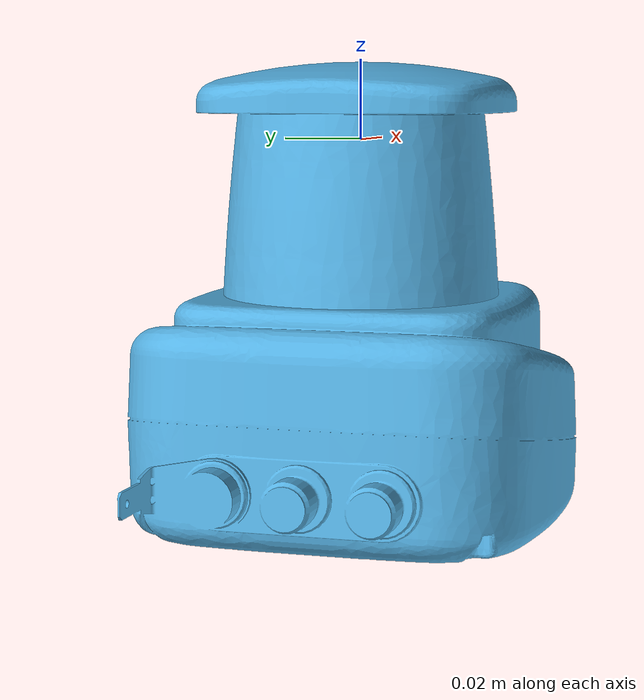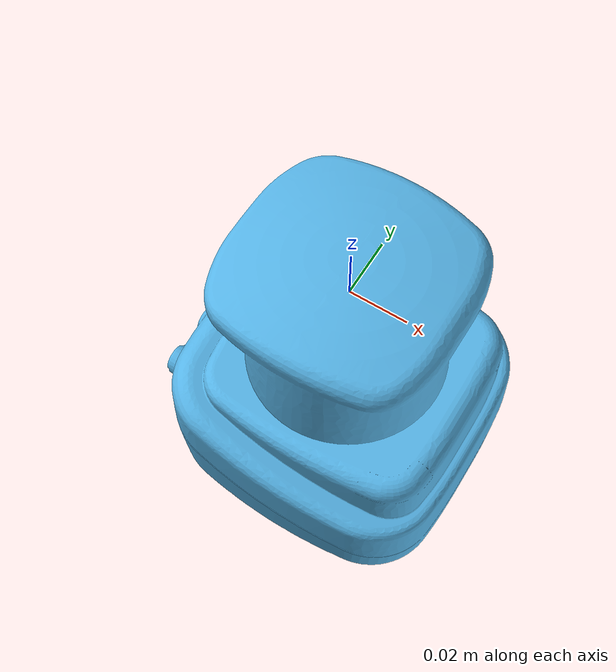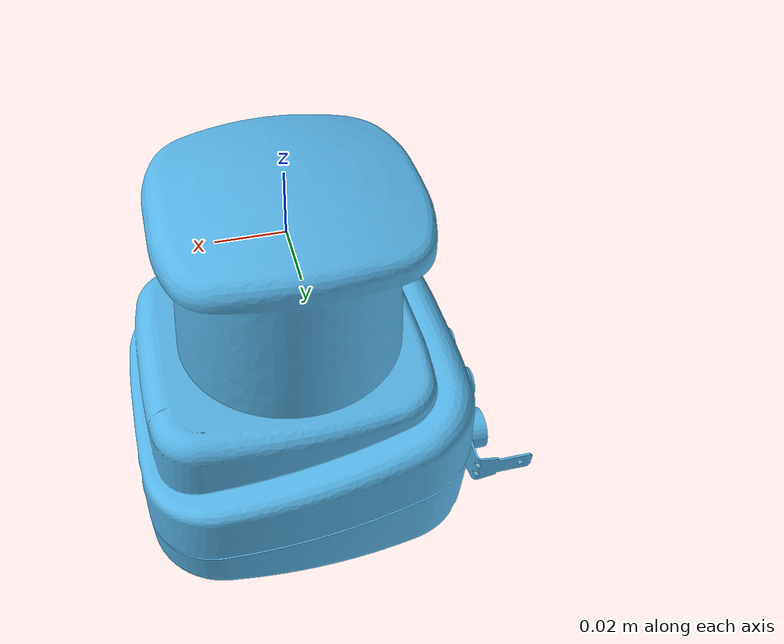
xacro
<?xml version="1.0"?>
<robot xmlns:xacro="http://wiki.ros.org/xacro" name="r2000" >
    <xacro:include filename="$(find pf_description)/urdf/r2000.urdf.xacro" />

    <!-- create a virtual root link -->
    <link name="world" />

    <!-- instantiate r2300 macro -->
    <xacro:r2000 prefix="" />

    <!-- connect world link to scanner link -->
    <joint name="world_joint" type="fixed">
        <parent link="world" />
        <child link = "scanner_link" />
        <origin xyz="0.0 0.0 0.0" rpy="0.0 0.0 0.0" />
    </joint>
</robot>

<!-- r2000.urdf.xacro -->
<robot xmlns:xacro="http://ros.org/wiki/xacro">

    <xacro:macro name="r2000" params="prefix" >
        <link name="${prefix}scanner_link" >
            <visual>
                <origin xyz="0 0 0" rpy="0 0 0" />
                <geometry>
                    <mesh filename="package://pf_description/meshes/R2000.stl" scale="0.001 0.001 0.001" />
                </geometry>
            </visual>

            <collision>
                <origin xyz="-0.0058 0 -0.03885" rpy="0 0 0" />
                <geometry>
                    <box size="0.118 0.108 0.117" />
                </geometry>
            </collision>
        </link>
    </xacro:macro>
</robot>
